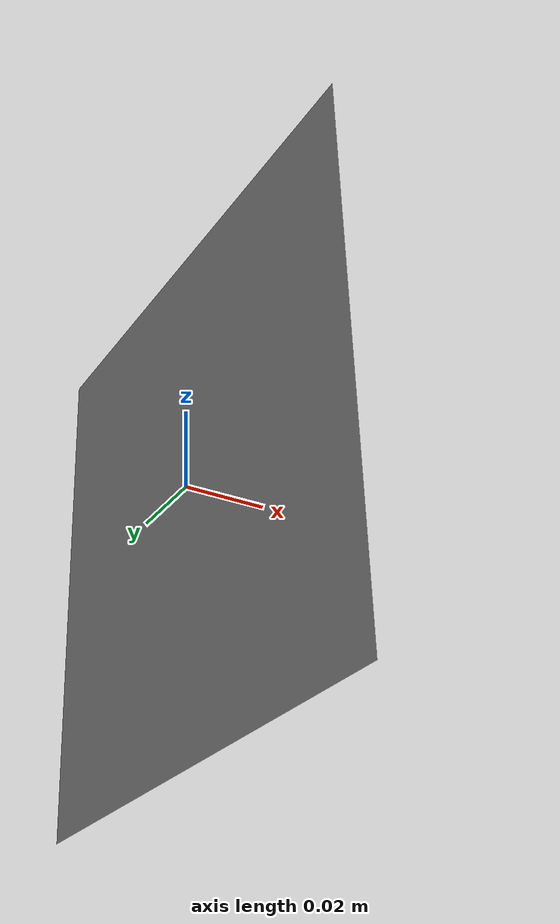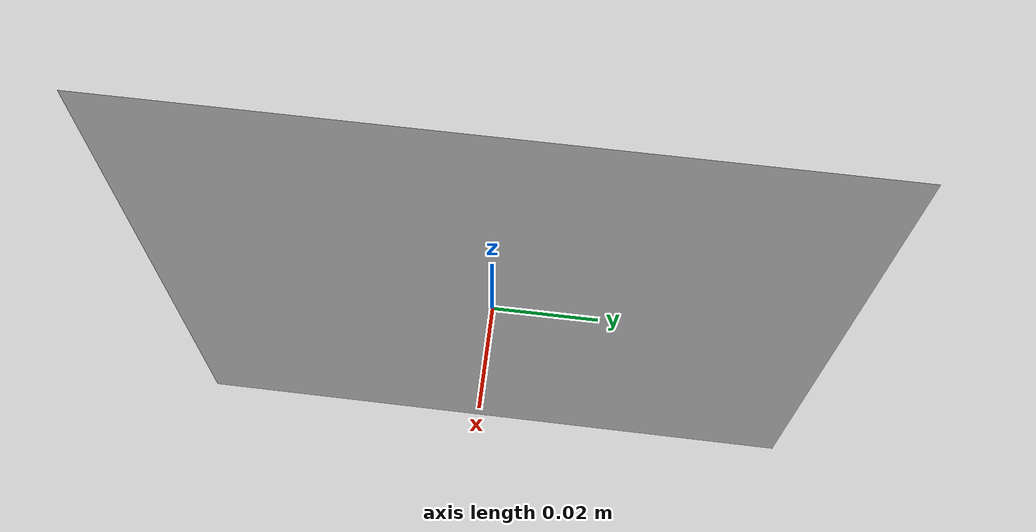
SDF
<?xml version='1.0'?>
<sdf version='1.5'>
  <model name='Mire'>
    <link name='link_0'>
    <gravity>0</gravity>
      <visual name='visual'>
        <geometry>
          <mesh>
            <uri>model://Mire/meshes/mire.dae</uri>
            <scale>0.13 0.13 0.13</scale>
          </mesh>
        </geometry>
        <material>
          <lighting>5</lighting>
          <script>
            <uri>model://Mire/materials/textures</uri>
            <name>vrc/Mire</name>
          </script>
          <shader type='pixel'/>
          <ambient>0.3 0.3 0.3 1</ambient>
          <diffuse>0.7 0.7 0.7 1</diffuse>
          <specular>0.01 0.01 0.01 1</specular>
          <emissive>0 0 0 1</emissive>
        </material>
        <cast_shadows>0</cast_shadows>
        <transparency>0</transparency>
      </visual>
    </link>
    <static>0</static>
    <allow_auto_disable>1</allow_auto_disable>
  </model>
</sdf>
